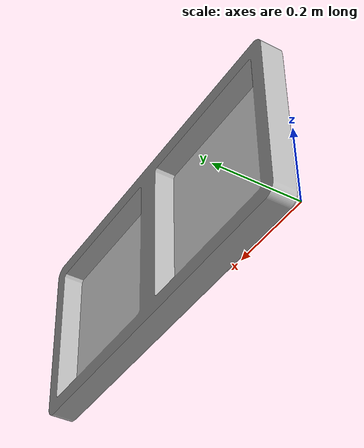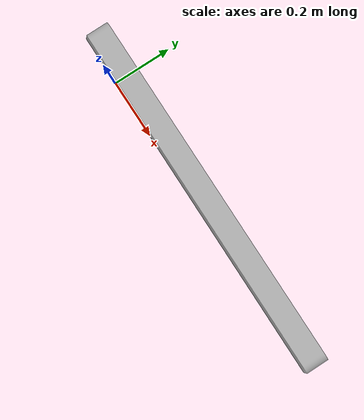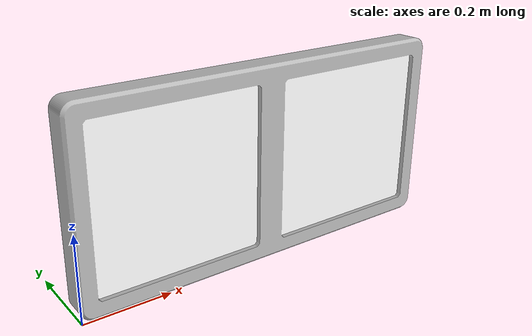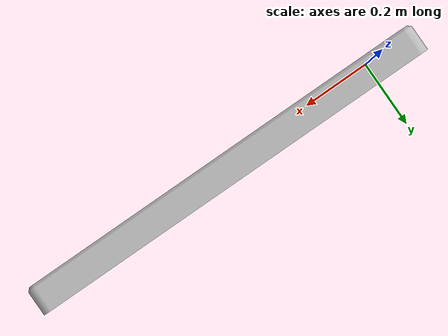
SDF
<?xml version="1.0" ?>
<sdf version="1.5">
  <model name="framed_sign">
    <static>true</static>
    <link name="framed_sign">
        <collision name="framed_sign_collision">
         <geometry>
            <mesh>
                <uri>model://framed_sign/meshes/model.dae</uri>
                <scale>0.5 0.5 0.5</scale>
            </mesh>
        </geometry>
      </collision>

      <visual name="framed_sign_mesh">
        <cast_shadows>false</cast_shadows>
        <geometry>
            <mesh>
                <uri>model://framed_sign/meshes/model.dae</uri>
                <scale>0.5 0.5 0.5</scale>
            </mesh>
        </geometry>
      </visual>
    </link>
  </model>
</sdf>
